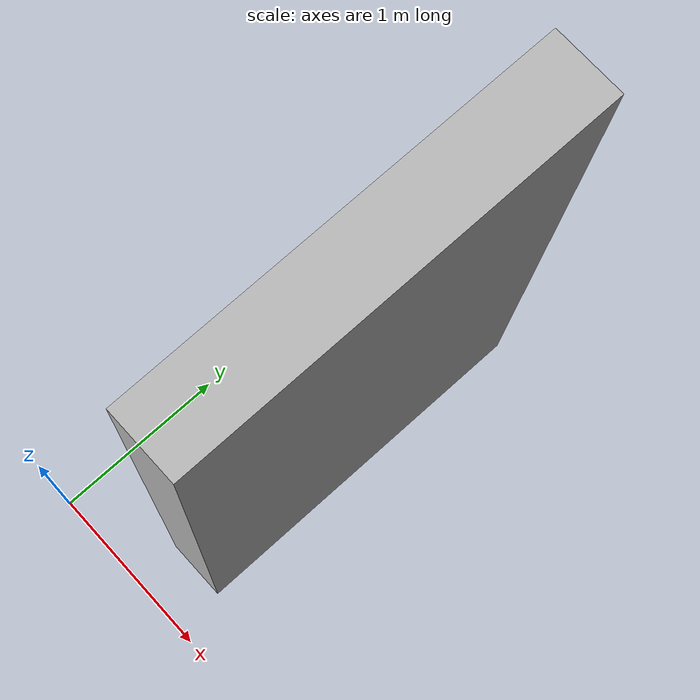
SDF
<?xml version="1.0" ?>
<sdf version="1.3">
	<model name="cereales">
 		<static>true</static>
      	<link name="cereales_body">
			<collision name='cereales_collision'>
		      <geometry>
		        <mesh>
		        	<uri>model://cereales/meshes/cereales2.dae</uri>
		        	<scale>10 10 10</scale>
		        </mesh>
		      </geometry>
			</collision>

		    <visual name="cereales_visual">
		      <geometry>
		        <mesh><uri>model://cereales/meshes/cereales.dae</uri>
		        <scale>10 10 10</scale></mesh>
		      </geometry>
		    </visual>
	  	</link>
    </model>
</sdf>
